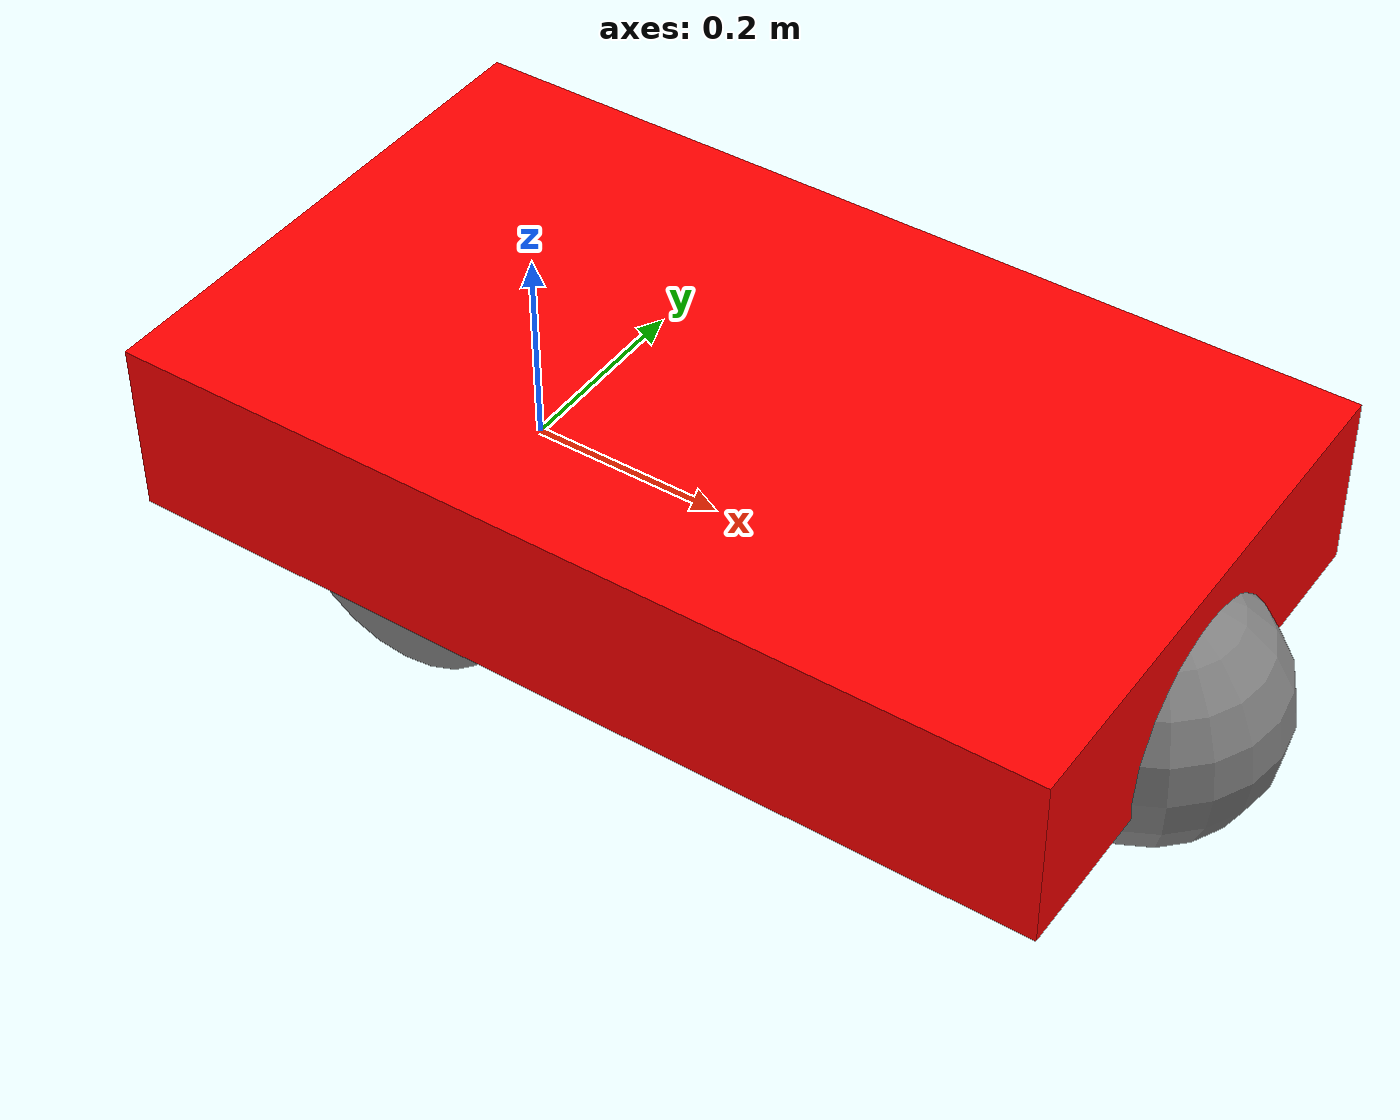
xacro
<?xml version="1.0"?>
<robot xmlns:xacro="http://www.ros.org/wiki/xacro"  name="robot">

    <!-- Options -->
    <xacro:arg name="use_ros2_control" default="true"/>
    <xacro:arg name="sim_mode" default="false"/>

    <!-- Basic  Bot -->
    <xacro:include filename="robot_core.xacro" />

    <!-- Control stuffs -->
    <xacro:if value="$(arg use_ros2_control)">
        <xacro:include filename="ros2_control.xacro" />
    </xacro:if>
    <xacro:unless value="$(arg use_ros2_control)">
        <xacro:include filename="gazebo_control.xacro" />
    </xacro:unless>

    <!-- Sensors -->

</robot>

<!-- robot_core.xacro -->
<robot xmlns:xacro="http://www.ros.org/wiki/xacro" >

    <xacro:include filename="inertial_macros.xacro"/>

    <xacro:property name="chassis_length" value="0.95"/>
    <xacro:property name="chassis_width" value="0.55"/>
    <xacro:property name="chassis_height" value="0.18"/>
    <xacro:property name="chassis_mass" value="1.0"/>
    <xacro:property name="wheel_radius" value="0.12"/>
    <xacro:property name="wheel_thickness" value="0.08"/>
    <xacro:property name="wheel_mass" value="0.05"/>
    <xacro:property name="wheel_offset_x" value="0.25"/>
    <xacro:property name="wheel_offset_y" value="0.18"/>
    <xacro:property name="wheel_offset_z" value="0.01"/>
    <xacro:property name="caster_wheel_radius" value="0.13"/>
    <xacro:property name="caster_wheel_mass" value="0.01"/>
    <xacro:property name="caster_wheel_offset_x" value="0.90"/>
    <xacro:property name="caster_wheel_offset_z" value="${wheel_offset_z - wheel_radius + caster_wheel_radius}"/>

    <material name="white">
        <color rgba="1 1 1 1" />
    </material>

    <material name="orange">
        <color rgba="1 0.3 0.1 1"/>
    </material>

    <material name="blue">
        <color rgba="0.2 0.2 1 1"/>
    </material>

    <material name="black">
        <color rgba="0 0 0 1"/>
    </material>

    <material name="grey">
        <color rgba="0.5 0.5 0.5 1"/>
    </material>

    <material name="red">
        <color rgba="1 0 0 1"/>
    </material>

    <!-- BASE LINK -->

    <link name="base_link">

    </link>

    <!-- BASE_FOOTPRINT LINK -->

    <joint name="base_footprint_joint" type="fixed">
        <parent link="base_link"/>
        <child link="base_footprint"/>
        <origin xyz="0 0 0" rpy="0 0 0"/>
    </joint>

    <link name="base_footprint">
    </link>

    <!-- CHASSIS LINK -->

    <joint name="chassis_joint" type="fixed">
        <parent link="base_link"/>
        <child link="chassis"/>
        <origin xyz="${-wheel_offset_x} 0 ${-wheel_offset_z}"/>
    </joint>

    <link name="chassis">
        <visual>
            <origin xyz="${chassis_length/2} 0 ${chassis_height/2}"/>
            <geometry>
                <box size="${chassis_length} ${chassis_width} ${chassis_height}"/>
            </geometry>
            <material name="red"/>
        </visual>
        <collision>
            <origin xyz="${chassis_length/2} 0 ${chassis_height/2}"/>
            <geometry>
                <box size="${chassis_length} ${chassis_width} ${chassis_height}"/>
            </geometry>
        </collision>
        <xacro:inertial_box mass="0.5" x="${chassis_length}" y="${chassis_width}" z="${chassis_height}">
            <origin xyz="${chassis_length/2} 0 ${chassis_height/2}" rpy="0 0 0"/>
        </xacro:inertial_box>
    </link>

    <gazebo reference="chassis">
        <material>Gazebo/Red</material>
    </gazebo>

    <!-- LEFT WHEEL LINK -->

    <joint name="left_wheel_joint" type="continuous">
        <parent link="base_link"/>
        <child link="left_wheel"/>
        <origin xyz="0 ${wheel_offset_y} 0" rpy="-${pi/2} 0 0" />
        <axis xyz="0 0 1"/>
    </joint>

    <link name="left_wheel">
        <visual>
            <geometry>
                <cylinder radius="${wheel_radius}" length="${wheel_thickness}"/>
            </geometry>
            <material name="grey"/>
        </visual>
        <collision>
            <geometry>
                <sphere radius="${wheel_radius}"/>
            </geometry>
        </collision>
        <xacro:inertial_cylinder mass="${wheel_mass}" length="${wheel_thickness}" radius="${wheel_radius}">
            <origin xyz="0 0 0" rpy="0 0 0"/>
        </xacro:inertial_cylinder>
    </link>

    <gazebo reference="left_wheel">
        <material>Gazebo/Grey</material>
    </gazebo>

    <!-- RIGHT WHEEL LINK -->

    <joint name="right_wheel_joint" type="continuous">
        <parent link="base_link"/>
        <child link="right_wheel"/>
        <origin xyz="0 ${-wheel_offset_y} 0" rpy="${pi/2} 0 0" />
        <axis xyz="0 0 -1"/>
    </joint>

    <link name="right_wheel">
        <visual>
            <geometry>
                <cylinder radius="${wheel_radius}" length="${wheel_thickness}"/>
            </geometry>
            <material name="grey"/>
        </visual>
        <collision>
            <geometry>
                <sphere radius="${wheel_radius}"/>
            </geometry>
        </collision>
        <xacro:inertial_cylinder mass="${wheel_mass}" length="${wheel_thickness}" radius="${wheel_radius}">
            <origin xyz="0 0 0" rpy="0 0 0"/>
        </xacro:inertial_cylinder>
    </link>

    <gazebo reference="right_wheel">
        <material>Gazebo/Grey</material>
    </gazebo>

    <!-- CASTER WHEEL LINK -->

    <joint name="caster_wheel_joint" type="fixed">
        <parent link="chassis"/>
        <child link="caster_wheel"/>
        <origin xyz="${caster_wheel_offset_x} 0 ${caster_wheel_offset_z}"/>
    </joint>

    <link name="caster_wheel">
        <visual>
            <geometry>
                <sphere radius="${caster_wheel_radius}"/>
            </geometry>
            <material name="grey"/>
        </visual>
        <collision>
            <geometry>
                <sphere radius="${caster_wheel_radius}"/>
            </geometry>
        </collision>
        <xacro:inertial_sphere mass="${caster_wheel_mass}" radius="${caster_wheel_radius}">
            <origin xyz="0 0 0" rpy="0 0 0"/>
        </xacro:inertial_sphere>
    </link>

    <gazebo reference="caster_wheel">
        <material>Gazebo/Grey</material>
        <mu1 value="0.001"/>
        <mu2 value="0.001"/>
    </gazebo>

</robot>
